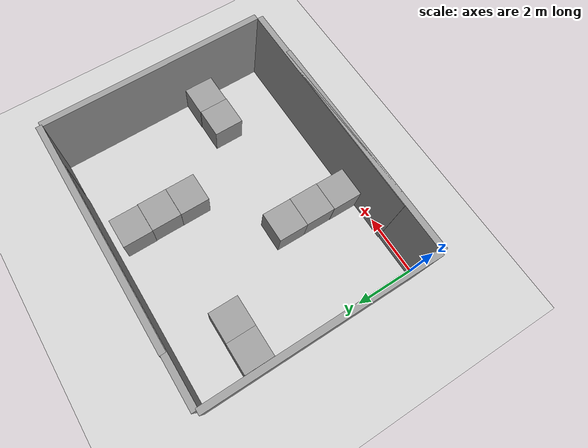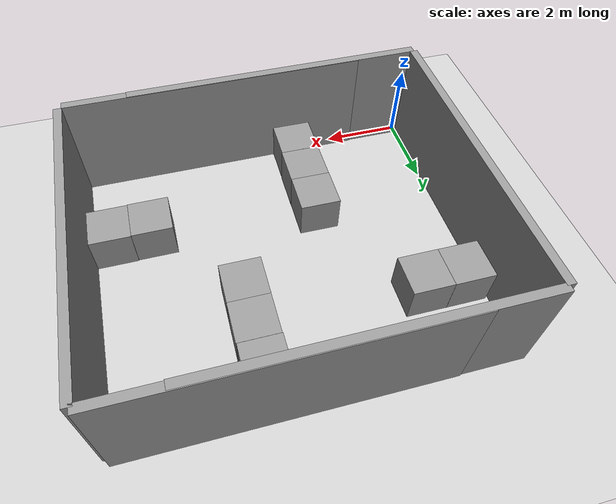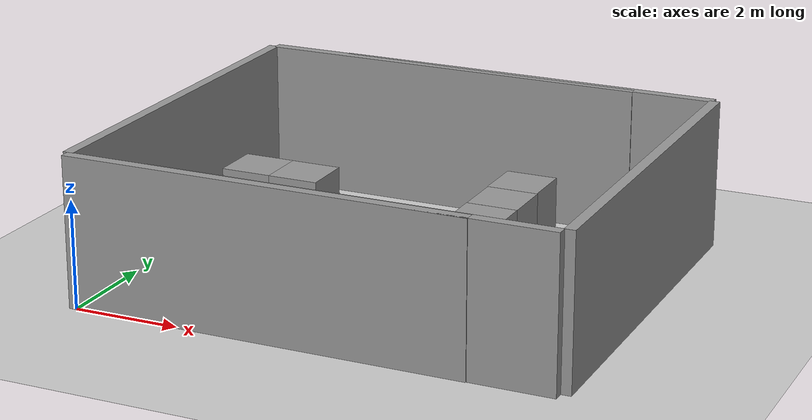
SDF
<sdf version="1.6">
 <world name="default">
  <light name="sun" type="directional">
   <pose>0 0 10 0 -0 0</pose>
   <diffuse>0.8 0.8 0.8 1</diffuse>
   <specular>0.1 0.1 0.1 1</specular>
   <attenuation>
    <range>1000</range>
    <constant>0.9</constant>
    <linear>0.01</linear>
    <quadratic>0.001</quadratic>
   </attenuation>
   <direction>-0.5 0.5 -1</direction>
  </light>
  <model name="ground_plane">
   <static>1</static>
   <link name="link">
    <collision name="collision">
     <geometry><plane><normal>0 0 1</normal><size>100 100</size></plane></geometry>
     <surface><friction><ode><mu>100</mu><mu2>50</mu2></ode></friction></surface>
    </collision>
    <visual name="visual">
     <cast_shadows>0</cast_shadows>
     <geometry><plane><normal>0 0 1</normal><size>100 100</size></plane></geometry>
     <material>
      <script><uri>file://media/materials/scripts/gazebo.material</uri><name>Gazebo/Grey</name></script>
     </material>
    </visual>
   </link>
  </model>
  <gravity>0 0 -9.8</gravity>
  <magnetic_field>6e-06 2.3e-05 -4.2e-05</magnetic_field>
  <atmosphere type="adiabatic"/>
  <physics name="default_physics" default="0" type="ode">
   <max_step_size>0.001</max_step_size>
   <real_time_factor>1</real_time_factor>
   <real_time_update_rate>1000</real_time_update_rate>
  </physics>
  <scene><ambient>0.4 0.4 0.4 1</ambient><background>0.7 0.7 0.7 1</background><shadows>1</shadows></scene>
  <spherical_coordinates>
   <surface_model>EARTH_WGS84</surface_model>
   <latitude_deg>0</latitude_deg>
   <longitude_deg>0</longitude_deg>
   <elevation>0</elevation>
   <heading_deg>0</heading_deg>
  </spherical_coordinates>
  <model name="grey_wall">
   <static>1</static>
   <link name="link">
    <pose>0 0 1.4 0 -0 0</pose>
    <collision name="collision"><geometry><box><size>7.5 0.2 2.8</size></box></geometry></collision>
    <visual name="visual">
     <cast_shadows>0</cast_shadows>
     <geometry><box><size>7.5 0.2 2.8</size></box></geometry>
     <material>
      <script>
       <uri>model://grey_wall/materials/scripts</uri>
       <uri>model://grey_wall/materials/textures</uri>
       <name>vrc/grey_wall</name>
      </script>
     </material>
    </visual>
   </link>
   <pose>3.62347 0.063154 0 0 -0 0</pose>
  </model>
  <model name="grey_wall_0">
   <static>1</static>
   <link name="link">
    <pose>0 0 1.4 0 -0 0</pose>
    <collision name="collision"><geometry><box><size>7.5 0.2 2.8</size></box></geometry></collision>
    <visual name="visual">
     <cast_shadows>0</cast_shadows>
     <geometry><box><size>7.5 0.2 2.8</size></box></geometry>
     <material>
      <script>
       <uri>model://grey_wall/materials/scripts</uri>
       <uri>model://grey_wall/materials/textures</uri>
       <name>vrc/grey_wall</name>
      </script>
     </material>
    </visual>
   </link>
   <pose>-0.123972 3.90291 0 0 -0 1.57239</pose>
  </model>
  <model name="grey_wall_1">
   <static>1</static>
   <link name="link">
    <pose>0 0 1.4 0 -0 0</pose>
    <collision name="collision"><geometry><box><size>7.5 0.2 2.8</size></box></geometry></collision>
    <visual name="visual">
     <cast_shadows>0</cast_shadows>
     <geometry><box><size>7.5 0.2 2.8</size></box></geometry>
     <material>
      <script>
       <uri>model://grey_wall/materials/scripts</uri>
       <uri>model://grey_wall/materials/textures</uri>
       <name>vrc/grey_wall</name>
      </script>
     </material>
    </visual>
   </link>
   <pose>3.66022 7.68894 0 0 -0 0</pose>
  </model>
  <model name="grey_wall_2">
   <static>1</static>
   <link name="link">
    <pose>0 0 1.4 0 -0 0</pose>
    <collision name="collision"><geometry><box><size>7.5 0.2 2.8</size></box></geometry></collision>
    <visual name="visual">
     <cast_shadows>0</cast_shadows>
     <geometry><box><size>7.5 0.2 2.8</size></box></geometry>
     <material>
      <script>
       <uri>model://grey_wall/materials/scripts</uri>
       <uri>model://grey_wall/materials/textures</uri>
       <name>vrc/grey_wall</name>
      </script>
     </material>
    </visual>
   </link>
   <pose>5.17468 0.081519 0 0 -0 0</pose>
  </model>
  <model name="grey_wall_3">
   <static>1</static>
   <link name="link">
    <pose>0 0 1.4 0 -0 0</pose>
    <collision name="collision"><geometry><box><size>7.5 0.2 2.8</size></box></geometry></collision>
    <visual name="visual">
     <cast_shadows>0</cast_shadows>
     <geometry><box><size>7.5 0.2 2.8</size></box></geometry>
     <material>
      <script>
       <uri>model://grey_wall/materials/scripts</uri>
       <uri>model://grey_wall/materials/textures</uri>
       <name>vrc/grey_wall</name>
      </script>
     </material>
    </visual>
   </link>
   <pose>8.99516 3.92397 0 0 -0 1.57453</pose>
  </model>
  <model name="grey_wall_4">
   <static>1</static>
   <link name="link">
    <pose>0 0 1.4 0 -0 0</pose>
    <collision name="collision"><geometry><box><size>7.5 0.2 2.8</size></box></geometry></collision>
    <visual name="visual">
     <cast_shadows>0</cast_shadows>
     <geometry><box><size>7.5 0.2 2.8</size></box></geometry>
     <material>
      <script>
       <uri>model://grey_wall/materials/scripts</uri>
       <uri>model://grey_wall/materials/textures</uri>
       <name>vrc/grey_wall</name>
      </script>
     </material>
    </visual>
   </link>
   <pose>5.2099 7.70921 0 0 -0 0</pose>
  </model>
  <model name="unit_box_0">
   <pose>3.22747 0.687465 0.5 0 0 -0.007818</pose>
   <link name="link">
    <inertial>
     <mass>1</mass>
     <inertia>
      <ixx>0.166667</ixx>
      <ixy>0</ixy>
      <ixz>0</ixz>
      <iyy>0.166667</iyy>
      <iyz>0</iyz>
      <izz>0.166667</izz>
     </inertia>
    </inertial>
    <collision name="collision"><geometry><box><size>1 1 1</size></box></geometry></collision>
    <visual name="visual">
     <geometry><box><size>1 1 1</size></box></geometry>
     <material>
      <script><name>Gazebo/Grey</name><uri>file://media/materials/scripts/gazebo.material</uri></script>
     </material>
    </visual>
   </link>
  </model>
  <model name="unit_box_1">
   <pose>3.2435 1.6874 0.499995 1e-05 0 -0.007807</pose>
   <link name="link">
    <inertial>
     <mass>1</mass>
     <inertia>
      <ixx>0.166667</ixx>
      <ixy>0</ixy>
      <ixz>0</ixz>
      <iyy>0.166667</iyy>
      <iyz>0</iyz>
      <izz>0.166667</izz>
     </inertia>
    </inertial>
    <collision name="collision"><geometry><box><size>1 1 1</size></box></geometry></collision>
    <visual name="visual">
     <geometry><box><size>1 1 1</size></box></geometry>
     <material>
      <script><name>Gazebo/Grey</name><uri>file://media/materials/scripts/gazebo.material</uri></script>
     </material>
    </visual>
   </link>
  </model>
  <model name="unit_box_2">
   <pose>3.24734 2.68741 0.5 0 0 -0.007805</pose>
   <link name="link">
    <inertial>
     <mass>1</mass>
     <inertia>
      <ixx>0.166667</ixx>
      <ixy>0</ixy>
      <ixz>0</ixz>
      <iyy>0.166667</iyy>
      <iyz>0</iyz>
      <izz>0.166667</izz>
     </inertia>
    </inertial>
    <collision name="collision"><geometry><box><size>1 1 1</size></box></geometry></collision>
    <visual name="visual">
     <geometry><box><size>1 1 1</size></box></geometry>
     <material>
      <script><name>Gazebo/Grey</name><uri>file://media/materials/scripts/gazebo.material</uri></script>
     </material>
    </visual>
   </link>
  </model>
  <model name="unit_box_3">
   <pose>5.55225 6.83891 0.499995 0 1e-05 -0.000933</pose>
   <link name="link">
    <inertial>
     <mass>1</mass>
     <inertia>
      <ixx>0.166667</ixx>
      <ixy>0</ixy>
      <ixz>0</ixz>
      <iyy>0.166667</iyy>
      <iyz>0</iyz>
      <izz>0.166667</izz>
     </inertia>
    </inertial>
    <collision name="collision"><geometry><box><size>1 1 1</size></box></geometry></collision>
    <visual name="visual">
     <geometry><box><size>1 1 1</size></box></geometry>
     <material>
      <script><name>Gazebo/Grey</name><uri>file://media/materials/scripts/gazebo.material</uri></script>
     </material>
    </visual>
   </link>
  </model>
  <model name="unit_box_4">
   <pose>5.56426 5.83829 0.499995 1e-05 -0 -0.000369</pose>
   <link name="link">
    <inertial>
     <mass>1</mass>
     <inertia>
      <ixx>0.166667</ixx>
      <ixy>0</ixy>
      <ixz>0</ixz>
      <iyy>0.166667</iyy>
      <iyz>0</iyz>
      <izz>0.166667</izz>
     </inertia>
    </inertial>
    <collision name="collision"><geometry><box><size>1 1 1</size></box></geometry></collision>
    <visual name="visual">
     <geometry><box><size>1 1 1</size></box></geometry>
     <material>
      <script><name>Gazebo/Grey</name><uri>file://media/materials/scripts/gazebo.material</uri></script>
     </material>
    </visual>
   </link>
  </model>
  <model name="unit_box_5">
   <pose>5.56171 4.83792 0.499995 -1e-05 -0 -0.000305</pose>
   <link name="link">
    <inertial>
     <mass>1</mass>
     <inertia>
      <ixx>0.166667</ixx>
      <ixy>0</ixy>
      <ixz>0</ixz>
      <iyy>0.166667</iyy>
      <iyz>0</iyz>
      <izz>0.166667</izz>
     </inertia>
    </inertial>
    <collision name="collision"><geometry><box><size>1 1 1</size></box></geometry></collision>
    <visual name="visual">
     <geometry><box><size>1 1 1</size></box></geometry>
     <material>
      <script><name>Gazebo/Grey</name><uri>file://media/materials/scripts/gazebo.material</uri></script>
     </material>
    </visual>
   </link>
  </model>
  <model name="unit_box_6">
   <pose>8.39713 2.49681 0.5 0 -0 0.000423</pose>
   <link name="link">
    <inertial>
     <mass>1</mass>
     <inertia>
      <ixx>0.166667</ixx>
      <ixy>0</ixy>
      <ixz>0</ixz>
      <iyy>0.166667</iyy>
      <iyz>0</iyz>
      <izz>0.166667</izz>
     </inertia>
    </inertial>
    <collision name="collision"><geometry><box><size>1 1 1</size></box></geometry></collision>
    <visual name="visual">
     <geometry><box><size>1 1 1</size></box></geometry>
     <material>
      <script><name>Gazebo/Grey</name><uri>file://media/materials/scripts/gazebo.material</uri></script>
     </material>
    </visual>
   </link>
  </model>
  <model name="unit_box_7">
   <pose>7.39714 2.48187 0.499995 -1e-05 -0 0.000422</pose>
   <link name="link">
    <inertial>
     <mass>1</mass>
     <inertia>
      <ixx>0.166667</ixx>
      <ixy>0</ixy>
      <ixz>0</ixz>
      <iyy>0.166667</iyy>
      <iyz>0</iyz>
      <izz>0.166667</izz>
     </inertia>
    </inertial>
    <collision name="collision"><geometry><box><size>1 1 1</size></box></geometry></collision>
    <visual name="visual">
     <geometry><box><size>1 1 1</size></box></geometry>
     <material>
      <script><name>Gazebo/Grey</name><uri>file://media/materials/scripts/gazebo.material</uri></script>
     </material>
    </visual>
   </link>
  </model>
  <model name="unit_box_8">
   <pose>0.530977 5.67288 0.499995 -1e-05 -0 -3.6e-05</pose>
   <link name="link">
    <inertial>
     <mass>1</mass>
     <inertia>
      <ixx>0.166667</ixx>
      <ixy>0</ixy>
      <ixz>0</ixz>
      <iyy>0.166667</iyy>
      <iyz>0</iyz>
      <izz>0.166667</izz>
     </inertia>
    </inertial>
    <collision name="collision"><geometry><box><size>1 1 1</size></box></geometry></collision>
    <visual name="visual">
     <geometry><box><size>1 1 1</size></box></geometry>
     <material>
      <script><name>Gazebo/Grey</name><uri>file://media/materials/scripts/gazebo.material</uri></script>
     </material>
    </visual>
   </link>
  </model>
  <model name="unit_box_9">
   <pose>1.53098 5.66989 0.499995 -1e-05 -0 -3.6e-05</pose>
   <link name="link">
    <inertial>
     <mass>1</mass>
     <inertia>
      <ixx>0.166667</ixx>
      <ixy>0</ixy>
      <ixz>0</ixz>
      <iyy>0.166667</iyy>
      <iyz>0</iyz>
      <izz>0.166667</izz>
     </inertia>
    </inertial>
    <collision name="collision"><geometry><box><size>1 1 1</size></box></geometry></collision>
    <visual name="visual">
     <geometry><box><size>1 1 1</size></box></geometry>
     <material>
      <script><name>Gazebo/Grey</name><uri>file://media/materials/scripts/gazebo.material</uri></script>
     </material>
    </visual>
   </link>
  </model>
 </world>
</sdf>
